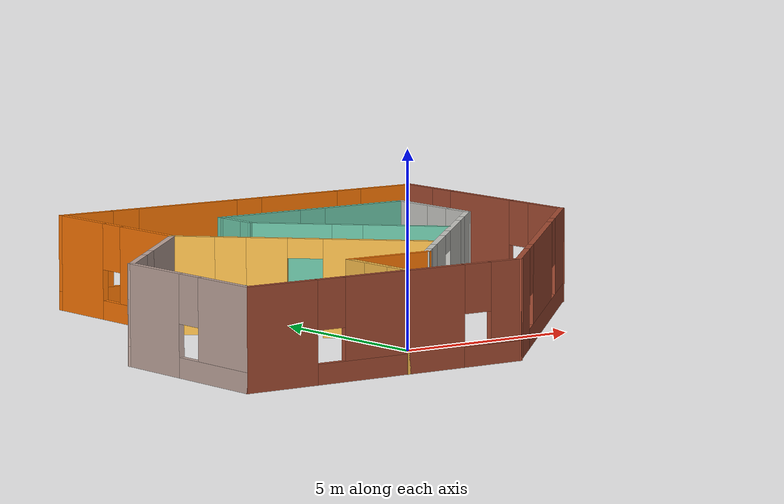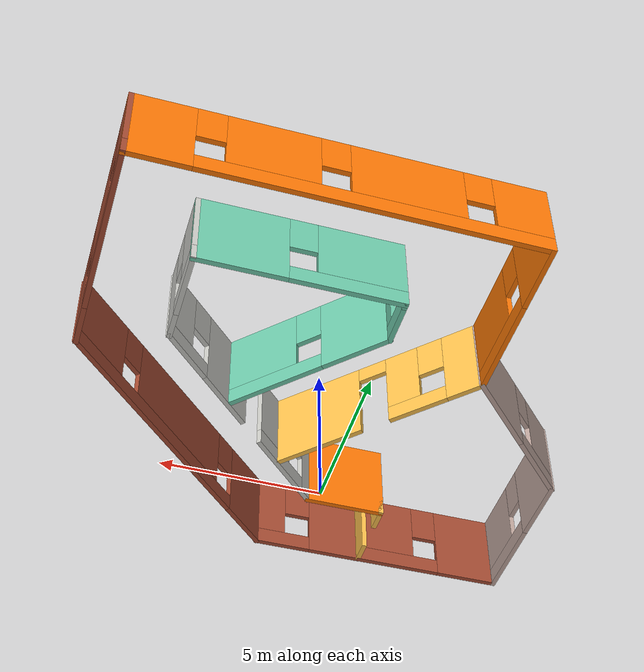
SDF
<?xml version='1.0'?>
<sdf version='1.6'>
  <model name='new_world'>
    <pose frame=''>0.766878 4.00697 0 0 -0 0</pose>
    <link name='Wall_0'>
      <pose frame=''>-2.83688 -5.59197 0 0 -0 1.5708</pose>
      <visual name='Wall_0_Visual_0'>
        <pose frame=''>-0.840266 0 1.25 0 -0 0</pose>
        <geometry>
          <box>
            <size>0.819468 0.15 2.5</size>
          </box>
        </geometry>
        <material>
          <script>
            <uri>file://media/materials/scripts/gazebo.material</uri>
            <name>Gazebo/Grey</name>
          </script>
          <ambient>1 0.764706 0.305882 1</ambient>
        </material>
        <meta>
          <layer>0</layer>
        </meta>
      </visual>
      <collision name='Wall_0_Collision_0'>
        <geometry>
          <box>
            <size>0.819468 0.15 2.5</size>
          </box>
        </geometry>
        <pose frame=''>-0.840266 0 1.25 0 -0 0</pose>
      </collision>
      <visual name='Wall_0_Visual_1'>
        <pose frame=''>0.859734 0 1.25 0 -0 0</pose>
        <geometry>
          <box>
            <size>0.780532 0.15 2.5</size>
          </box>
        </geometry>
        <material>
          <script>
            <uri>file://media/materials/scripts/gazebo.material</uri>
            <name>Gazebo/Grey</name>
          </script>
          <ambient>1 0.764706 0.305882 1</ambient>
        </material>
        <meta>
          <layer>0</layer>
        </meta>
      </visual>
      <collision name='Wall_0_Collision_1'>
        <geometry>
          <box>
            <size>0.780532 0.15 2.5</size>
          </box>
        </geometry>
        <pose frame=''>0.859734 0 1.25 0 -0 0</pose>
      </collision>
      <visual name='Wall_0_Visual_2'>
        <pose frame=''>0.019468 0 2.25 0 -0 0</pose>
        <geometry>
          <box>
            <size>0.9 0.15 0.5</size>
          </box>
        </geometry>
        <material>
          <script>
            <uri>file://media/materials/scripts/gazebo.material</uri>
            <name>Gazebo/Grey</name>
          </script>
          <ambient>1 0.764706 0.305882 1</ambient>
        </material>
        <meta>
          <layer>0</layer>
        </meta>
      </visual>
      <collision name='Wall_0_Collision_2'>
        <geometry>
          <box>
            <size>0.9 0.15 0.5</size>
          </box>
        </geometry>
        <pose frame=''>0.019468 0 2.25 0 -0 0</pose>
      </collision>
    </link>
    <link name='Wall_1'>
      <collision name='Wall_1_Collision'>
        <geometry>
          <box>
            <size>2.5 0.15 2.5</size>
          </box>
        </geometry>
        <pose frame=''>0 0 1.25 0 -0 0</pose>
      </collision>
      <visual name='Wall_1_Visual'>
        <pose frame=''>0 0 1.25 0 -0 0</pose>
        <geometry>
          <box>
            <size>2.5 0.15 2.5</size>
          </box>
        </geometry>
        <material>
          <script>
            <uri>file://media/materials/scripts/gazebo.material</uri>
            <name>Gazebo/Grey</name>
          </script>
          <ambient>0.996078 0.47451 0.0196078 1</ambient>
        </material>
        <meta>
          <layer>0</layer>
        </meta>
      </visual>
      <pose frame=''>-1.66188 -4.41697 0 0 -0 0</pose>
    </link>
    <link name='Wall_10'>
      <pose frame=''>-1.16188 -6.76697 0 0 -0 0</pose>
      <visual name='Wall_10_Visual_0'>
        <pose frame=''>-0.891437 0 1.25 0 -0 0</pose>
        <geometry>
          <box>
            <size>1.71713 0.15 2.5</size>
          </box>
        </geometry>
        <material>
          <script>
            <uri>file://media/materials/scripts/gazebo.material</uri>
            <name>Gazebo/Bricks</name>
          </script>
          <ambient>1 1 1 1</ambient>
        </material>
        <meta>
          <layer>0</layer>
        </meta>
      </visual>
      <collision name='Wall_10_Collision_0'>
        <geometry>
          <box>
            <size>1.71713 0.15 2.5</size>
          </box>
        </geometry>
        <pose frame=''>-0.891437 0 1.25 0 -0 0</pose>
      </collision>
      <visual name='Wall_10_Visual_1'>
        <pose frame=''>0.858563 0 0.25 0 -0 0</pose>
        <geometry>
          <box>
            <size>1.78287 0.15 0.5</size>
          </box>
        </geometry>
        <material>
          <script>
            <uri>file://media/materials/scripts/gazebo.material</uri>
            <name>Gazebo/Bricks</name>
          </script>
          <ambient>1 1 1 1</ambient>
        </material>
        <meta>
          <layer>0</layer>
        </meta>
      </visual>
      <collision name='Wall_10_Collision_1'>
        <geometry>
          <box>
            <size>1.78287 0.15 0.5</size>
          </box>
        </geometry>
        <pose frame=''>0.858563 0 0.25 0 -0 0</pose>
      </collision>
      <visual name='Wall_10_Visual_2'>
        <pose frame=''>1.25856 0 1.5 0 -0 0</pose>
        <geometry>
          <box>
            <size>0.982874 0.15 2</size>
          </box>
        </geometry>
        <material>
          <script>
            <uri>file://media/materials/scripts/gazebo.material</uri>
            <name>Gazebo/Bricks</name>
          </script>
          <ambient>1 1 1 1</ambient>
        </material>
        <meta>
          <layer>0</layer>
        </meta>
      </visual>
      <collision name='Wall_10_Collision_2'>
        <geometry>
          <box>
            <size>0.982874 0.15 2</size>
          </box>
        </geometry>
        <pose frame=''>1.25856 0 1.5 0 -0 0</pose>
      </collision>
      <visual name='Wall_10_Visual_3'>
        <pose frame=''>0.367126 0 1.9 0 -0 0</pose>
        <geometry>
          <box>
            <size>0.8 0.15 1.2</size>
          </box>
        </geometry>
        <material>
          <script>
            <uri>file://media/materials/scripts/gazebo.material</uri>
            <name>Gazebo/Bricks</name>
          </script>
          <ambient>1 1 1 1</ambient>
        </material>
        <meta>
          <layer>0</layer>
        </meta>
      </visual>
      <collision name='Wall_10_Collision_3'>
        <geometry>
          <box>
            <size>0.8 0.15 1.2</size>
          </box>
        </geometry>
        <pose frame=''>0.367126 0 1.9 0 -0 0</pose>
      </collision>
    </link>
    <link name='Wall_11'>
      <pose frame=''>3.99562 -3.28447 0 0 -0 0.785398</pose>
      <visual name='Wall_11_Visual_0'>
        <pose frame=''>-4.07453 0 1.25 0 -0 0</pose>
        <geometry>
          <box>
            <size>1.85095 0.15 2.5</size>
          </box>
        </geometry>
        <material>
          <script>
            <uri>file://media/materials/scripts/gazebo.material</uri>
            <name>Gazebo/Bricks</name>
          </script>
          <ambient>1 1 1 1</ambient>
        </material>
        <meta>
          <layer>0</layer>
        </meta>
      </visual>
      <collision name='Wall_11_Collision_0'>
        <geometry>
          <box>
            <size>1.85095 0.15 2.5</size>
          </box>
        </geometry>
        <pose frame=''>-4.07453 0 1.25 0 -0 0</pose>
      </collision>
      <visual name='Wall_11_Visual_1'>
        <pose frame=''>0.925475 0 0.25 0 -0 0</pose>
        <geometry>
          <box>
            <size>8.14905 0.15 0.5</size>
          </box>
        </geometry>
        <material>
          <script>
            <uri>file://media/materials/scripts/gazebo.material</uri>
            <name>Gazebo/Bricks</name>
          </script>
          <ambient>1 1 1 1</ambient>
        </material>
        <meta>
          <layer>0</layer>
        </meta>
      </visual>
      <collision name='Wall_11_Collision_1'>
        <geometry>
          <box>
            <size>8.14905 0.15 0.5</size>
          </box>
        </geometry>
        <pose frame=''>0.925475 0 0.25 0 -0 0</pose>
      </collision>
      <visual name='Wall_11_Visual_2'>
        <pose frame=''>-0.154489 0 1.5 0 -0 0</pose>
        <geometry>
          <box>
            <size>4.38912 0.15 2</size>
          </box>
        </geometry>
        <material>
          <script>
            <uri>file://media/materials/scripts/gazebo.material</uri>
            <name>Gazebo/Bricks</name>
          </script>
          <ambient>1 1 1 1</ambient>
        </material>
        <meta>
          <layer>0</layer>
        </meta>
      </visual>
      <collision name='Wall_11_Collision_2'>
        <geometry>
          <box>
            <size>4.38912 0.15 2</size>
          </box>
        </geometry>
        <pose frame=''>-0.154489 0 1.5 0 -0 0</pose>
      </collision>
      <visual name='Wall_11_Visual_3'>
        <pose frame=''>3.92004 0 1.5 0 -0 0</pose>
        <geometry>
          <box>
            <size>2.15993 0.15 2</size>
          </box>
        </geometry>
        <material>
          <script>
            <uri>file://media/materials/scripts/gazebo.material</uri>
            <name>Gazebo/Bricks</name>
          </script>
          <ambient>1 1 1 1</ambient>
        </material>
        <meta>
          <layer>0</layer>
        </meta>
      </visual>
      <collision name='Wall_11_Collision_3'>
        <geometry>
          <box>
            <size>2.15993 0.15 2</size>
          </box>
        </geometry>
        <pose frame=''>3.92004 0 1.5 0 -0 0</pose>
      </collision>
      <visual name='Wall_11_Visual_4'>
        <pose frame=''>-2.74905 0 1.9 0 -0 0</pose>
        <geometry>
          <box>
            <size>0.8 0.15 1.2</size>
          </box>
        </geometry>
        <material>
          <script>
            <uri>file://media/materials/scripts/gazebo.material</uri>
            <name>Gazebo/Bricks</name>
          </script>
          <ambient>1 1 1 1</ambient>
        </material>
        <meta>
          <layer>0</layer>
        </meta>
      </visual>
      <collision name='Wall_11_Collision_4'>
        <geometry>
          <box>
            <size>0.8 0.15 1.2</size>
          </box>
        </geometry>
        <pose frame=''>-2.74905 0 1.9 0 -0 0</pose>
      </collision>
      <visual name='Wall_11_Visual_5'>
        <pose frame=''>2.44007 0 1.9 0 -0 0</pose>
        <geometry>
          <box>
            <size>0.8 0.15 1.2</size>
          </box>
        </geometry>
        <material>
          <script>
            <uri>file://media/materials/scripts/gazebo.material</uri>
            <name>Gazebo/Bricks</name>
          </script>
          <ambient>1 1 1 1</ambient>
        </material>
        <meta>
          <layer>0</layer>
        </meta>
      </visual>
      <collision name='Wall_11_Collision_5'>
        <geometry>
          <box>
            <size>0.8 0.15 1.2</size>
          </box>
        </geometry>
        <pose frame=''>2.44007 0 1.9 0 -0 0</pose>
      </collision>
    </link>
    <link name='Wall_17'>
      <pose frame=''>7.47812 3.49803 0 0 -0 1.5708</pose>
      <visual name='Wall_17_Visual_0'>
        <pose frame=''>-2.68969 0 1.25 0 -0 0</pose>
        <geometry>
          <box>
            <size>1.37062 0.15 2.5</size>
          </box>
        </geometry>
        <material>
          <script>
            <uri>file://media/materials/scripts/gazebo.material</uri>
            <name>Gazebo/Bricks</name>
          </script>
          <ambient>1 1 1 1</ambient>
        </material>
        <meta>
          <layer>0</layer>
        </meta>
      </visual>
      <collision name='Wall_17_Collision_0'>
        <geometry>
          <box>
            <size>1.37062 0.15 2.5</size>
          </box>
        </geometry>
        <pose frame=''>-2.68969 0 1.25 0 -0 0</pose>
      </collision>
      <visual name='Wall_17_Visual_1'>
        <pose frame=''>0.685309 0 0.25 0 -0 0</pose>
        <geometry>
          <box>
            <size>5.37938 0.15 0.5</size>
          </box>
        </geometry>
        <material>
          <script>
            <uri>file://media/materials/scripts/gazebo.material</uri>
            <name>Gazebo/Bricks</name>
          </script>
          <ambient>1 1 1 1</ambient>
        </material>
        <meta>
          <layer>0</layer>
        </meta>
      </visual>
      <collision name='Wall_17_Collision_1'>
        <geometry>
          <box>
            <size>5.37938 0.15 0.5</size>
          </box>
        </geometry>
        <pose frame=''>0.685309 0 0.25 0 -0 0</pose>
      </collision>
      <visual name='Wall_17_Visual_2'>
        <pose frame=''>0.086671 0 1.5 0 -0 0</pose>
        <geometry>
          <box>
            <size>2.5821 0.15 2</size>
          </box>
        </geometry>
        <material>
          <script>
            <uri>file://media/materials/scripts/gazebo.material</uri>
            <name>Gazebo/Bricks</name>
          </script>
          <ambient>1 1 1 1</ambient>
        </material>
        <meta>
          <layer>0</layer>
        </meta>
      </visual>
      <collision name='Wall_17_Collision_2'>
        <geometry>
          <box>
            <size>2.5821 0.15 2</size>
          </box>
        </geometry>
        <pose frame=''>0.086671 0 1.5 0 -0 0</pose>
      </collision>
      <visual name='Wall_17_Visual_3'>
        <pose frame=''>2.77636 0 1.5 0 -0 0</pose>
        <geometry>
          <box>
            <size>1.19728 0.15 2</size>
          </box>
        </geometry>
        <material>
          <script>
            <uri>file://media/materials/scripts/gazebo.material</uri>
            <name>Gazebo/Bricks</name>
          </script>
          <ambient>1 1 1 1</ambient>
        </material>
        <meta>
          <layer>0</layer>
        </meta>
      </visual>
      <collision name='Wall_17_Collision_3'>
        <geometry>
          <box>
            <size>1.19728 0.15 2</size>
          </box>
        </geometry>
        <pose frame=''>2.77636 0 1.5 0 -0 0</pose>
      </collision>
      <visual name='Wall_17_Visual_4'>
        <pose frame=''>-1.60438 0 1.9 0 -0 0</pose>
        <geometry>
          <box>
            <size>0.8 0.15 1.2</size>
          </box>
        </geometry>
        <material>
          <script>
            <uri>file://media/materials/scripts/gazebo.material</uri>
            <name>Gazebo/Bricks</name>
          </script>
          <ambient>1 1 1 1</ambient>
        </material>
        <meta>
          <layer>0</layer>
        </meta>
      </visual>
      <collision name='Wall_17_Collision_4'>
        <geometry>
          <box>
            <size>0.8 0.15 1.2</size>
          </box>
        </geometry>
        <pose frame=''>-1.60438 0 1.9 0 -0 0</pose>
      </collision>
      <visual name='Wall_17_Visual_5'>
        <pose frame=''>1.77772 0 1.9 0 -0 0</pose>
        <geometry>
          <box>
            <size>0.8 0.15 1.2</size>
          </box>
        </geometry>
        <material>
          <script>
            <uri>file://media/materials/scripts/gazebo.material</uri>
            <name>Gazebo/Bricks</name>
          </script>
          <ambient>1 1 1 1</ambient>
        </material>
        <meta>
          <layer>0</layer>
        </meta>
      </visual>
      <collision name='Wall_17_Collision_5'>
        <geometry>
          <box>
            <size>0.8 0.15 1.2</size>
          </box>
        </geometry>
        <pose frame=''>1.77772 0 1.9 0 -0 0</pose>
      </collision>
    </link>
    <link name='Wall_18'>
      <pose frame=''>1.80312 6.79803 0 0 -0 3.14159</pose>
      <visual name='Wall_18_Visual_0'>
        <pose frame=''>-4.8391 0 1.25 0 -0 0</pose>
        <geometry>
          <box>
            <size>1.8218 0.15 2.5</size>
          </box>
        </geometry>
        <material>
          <script>
            <uri>file://media/materials/scripts/gazebo.material</uri>
            <name>Gazebo/Grey</name>
          </script>
          <ambient>0.996078 0.47451 0.0196078 1</ambient>
        </material>
        <meta>
          <layer>0</layer>
        </meta>
      </visual>
      <collision name='Wall_18_Collision_0'>
        <geometry>
          <box>
            <size>1.8218 0.15 2.5</size>
          </box>
        </geometry>
        <pose frame=''>-4.8391 0 1.25 0 -0 0</pose>
      </collision>
      <visual name='Wall_18_Visual_1'>
        <pose frame=''>0.910901 0 0.25 0 -0 0</pose>
        <geometry>
          <box>
            <size>9.6782 0.15 0.5</size>
          </box>
        </geometry>
        <material>
          <script>
            <uri>file://media/materials/scripts/gazebo.material</uri>
            <name>Gazebo/Grey</name>
          </script>
          <ambient>0.996078 0.47451 0.0196078 1</ambient>
        </material>
        <meta>
          <layer>0</layer>
        </meta>
      </visual>
      <collision name='Wall_18_Collision_1'>
        <geometry>
          <box>
            <size>9.6782 0.15 0.5</size>
          </box>
        </geometry>
        <pose frame=''>0.910901 0 0.25 0 -0 0</pose>
      </collision>
      <visual name='Wall_18_Visual_2'>
        <pose frame=''>-1.86905 0 1.5 0 -0 0</pose>
        <geometry>
          <box>
            <size>2.51829 0.15 2</size>
          </box>
        </geometry>
        <material>
          <script>
            <uri>file://media/materials/scripts/gazebo.material</uri>
            <name>Gazebo/Grey</name>
          </script>
          <ambient>0.996078 0.47451 0.0196078 1</ambient>
        </material>
        <meta>
          <layer>0</layer>
        </meta>
      </visual>
      <collision name='Wall_18_Collision_2'>
        <geometry>
          <box>
            <size>2.51829 0.15 2</size>
          </box>
        </geometry>
        <pose frame=''>-1.86905 0 1.5 0 -0 0</pose>
      </collision>
      <visual name='Wall_18_Visual_3'>
        <pose frame=''>1.7683 0 1.5 0 -0 0</pose>
        <geometry>
          <box>
            <size>3.15642 0.15 2</size>
          </box>
        </geometry>
        <material>
          <script>
            <uri>file://media/materials/scripts/gazebo.material</uri>
            <name>Gazebo/Grey</name>
          </script>
          <ambient>0.996078 0.47451 0.0196078 1</ambient>
        </material>
        <meta>
          <layer>0</layer>
        </meta>
      </visual>
      <collision name='Wall_18_Collision_3'>
        <geometry>
          <box>
            <size>3.15642 0.15 2</size>
          </box>
        </geometry>
        <pose frame=''>1.7683 0 1.5 0 -0 0</pose>
      </collision>
      <visual name='Wall_18_Visual_4'>
        <pose frame=''>4.94826 0 1.5 0 -0 0</pose>
        <geometry>
          <box>
            <size>1.60349 0.15 2</size>
          </box>
        </geometry>
        <material>
          <script>
            <uri>file://media/materials/scripts/gazebo.material</uri>
            <name>Gazebo/Grey</name>
          </script>
          <ambient>0.996078 0.47451 0.0196078 1</ambient>
        </material>
        <meta>
          <layer>0</layer>
        </meta>
      </visual>
      <collision name='Wall_18_Collision_4'>
        <geometry>
          <box>
            <size>1.60349 0.15 2</size>
          </box>
        </geometry>
        <pose frame=''>4.94826 0 1.5 0 -0 0</pose>
      </collision>
      <visual name='Wall_18_Visual_5'>
        <pose frame=''>-3.5282 0 1.9 0 -0 0</pose>
        <geometry>
          <box>
            <size>0.8 0.15 1.2</size>
          </box>
        </geometry>
        <material>
          <script>
            <uri>file://media/materials/scripts/gazebo.material</uri>
            <name>Gazebo/Grey</name>
          </script>
          <ambient>0.996078 0.47451 0.0196078 1</ambient>
        </material>
        <meta>
          <layer>0</layer>
        </meta>
      </visual>
      <collision name='Wall_18_Collision_5'>
        <geometry>
          <box>
            <size>0.8 0.15 1.2</size>
          </box>
        </geometry>
        <pose frame=''>-3.5282 0 1.9 0 -0 0</pose>
      </collision>
      <visual name='Wall_18_Visual_6'>
        <pose frame=''>-0.209908 0 1.9 0 -0 0</pose>
        <geometry>
          <box>
            <size>0.8 0.15 1.2</size>
          </box>
        </geometry>
        <material>
          <script>
            <uri>file://media/materials/scripts/gazebo.material</uri>
            <name>Gazebo/Grey</name>
          </script>
          <ambient>0.996078 0.47451 0.0196078 1</ambient>
        </material>
        <meta>
          <layer>0</layer>
        </meta>
      </visual>
      <collision name='Wall_18_Collision_6'>
        <geometry>
          <box>
            <size>0.8 0.15 1.2</size>
          </box>
        </geometry>
        <pose frame=''>-0.209908 0 1.9 0 -0 0</pose>
      </collision>
      <visual name='Wall_18_Visual_7'>
        <pose frame=''>3.74651 0 1.9 0 -0 0</pose>
        <geometry>
          <box>
            <size>0.8 0.15 1.2</size>
          </box>
        </geometry>
        <material>
          <script>
            <uri>file://media/materials/scripts/gazebo.material</uri>
            <name>Gazebo/Grey</name>
          </script>
          <ambient>0.996078 0.47451 0.0196078 1</ambient>
        </material>
        <meta>
          <layer>0</layer>
        </meta>
      </visual>
      <collision name='Wall_18_Collision_7'>
        <geometry>
          <box>
            <size>0.8 0.15 1.2</size>
          </box>
        </geometry>
        <pose frame=''>3.74651 0 1.9 0 -0 0</pose>
      </collision>
    </link>
    <link name='Wall_19'>
      <pose frame=''>-3.87188 4.24803 0 0 0 -1.5708</pose>
      <visual name='Wall_19_Visual_0'>
        <pose frame=''>-1.57967 0 1.25 0 -0 0</pose>
        <geometry>
          <box>
            <size>2.09066 0.15 2.5</size>
          </box>
        </geometry>
        <material>
          <script>
            <uri>file://media/materials/scripts/gazebo.material</uri>
            <name>Gazebo/Grey</name>
          </script>
          <ambient>0.996078 0.47451 0.0196078 1</ambient>
        </material>
        <meta>
          <layer>0</layer>
        </meta>
      </visual>
      <collision name='Wall_19_Collision_0'>
        <geometry>
          <box>
            <size>2.09066 0.15 2.5</size>
          </box>
        </geometry>
        <pose frame=''>-1.57967 0 1.25 0 -0 0</pose>
      </collision>
      <visual name='Wall_19_Visual_1'>
        <pose frame=''>1.04533 0 0.25 0 -0 0</pose>
        <geometry>
          <box>
            <size>3.15934 0.15 0.5</size>
          </box>
        </geometry>
        <material>
          <script>
            <uri>file://media/materials/scripts/gazebo.material</uri>
            <name>Gazebo/Grey</name>
          </script>
          <ambient>0.996078 0.47451 0.0196078 1</ambient>
        </material>
        <meta>
          <layer>0</layer>
        </meta>
      </visual>
      <collision name='Wall_19_Collision_1'>
        <geometry>
          <box>
            <size>3.15934 0.15 0.5</size>
          </box>
        </geometry>
        <pose frame=''>1.04533 0 0.25 0 -0 0</pose>
      </collision>
      <visual name='Wall_19_Visual_2'>
        <pose frame=''>1.44533 0 1.5 0 -0 0</pose>
        <geometry>
          <box>
            <size>2.35934 0.15 2</size>
          </box>
        </geometry>
        <material>
          <script>
            <uri>file://media/materials/scripts/gazebo.material</uri>
            <name>Gazebo/Grey</name>
          </script>
          <ambient>0.996078 0.47451 0.0196078 1</ambient>
        </material>
        <meta>
          <layer>0</layer>
        </meta>
      </visual>
      <collision name='Wall_19_Collision_2'>
        <geometry>
          <box>
            <size>2.35934 0.15 2</size>
          </box>
        </geometry>
        <pose frame=''>1.44533 0 1.5 0 -0 0</pose>
      </collision>
      <visual name='Wall_19_Visual_3'>
        <pose frame=''>-0.134337 0 1.9 0 -0 0</pose>
        <geometry>
          <box>
            <size>0.8 0.15 1.2</size>
          </box>
        </geometry>
        <material>
          <script>
            <uri>file://media/materials/scripts/gazebo.material</uri>
            <name>Gazebo/Grey</name>
          </script>
          <ambient>0.996078 0.47451 0.0196078 1</ambient>
        </material>
        <meta>
          <layer>0</layer>
        </meta>
      </visual>
      <collision name='Wall_19_Collision_3'>
        <geometry>
          <box>
            <size>0.8 0.15 1.2</size>
          </box>
        </geometry>
        <pose frame=''>-0.134337 0 1.9 0 -0 0</pose>
      </collision>
    </link>
    <link name='Wall_2'>
      <pose frame=''>2.28852 -1.64157 0 0 -0 0.785398</pose>
      <visual name='Wall_2_Visual_0'>
        <pose frame=''>-3.70975 0 1.25 0 -0 0</pose>
        <geometry>
          <box>
            <size>0.580496 0.15 2.5</size>
          </box>
        </geometry>
        <material>
          <script>
            <uri>file://media/materials/scripts/gazebo.material</uri>
            <name>Gazebo/CeilingTiled</name>
          </script>
          <ambient>1 1 1 1</ambient>
        </material>
        <meta>
          <layer>0</layer>
        </meta>
      </visual>
      <collision name='Wall_2_Collision_0'>
        <geometry>
          <box>
            <size>0.580496 0.15 2.5</size>
          </box>
        </geometry>
        <pose frame=''>-3.70975 0 1.25 0 -0 0</pose>
      </collision>
      <visual name='Wall_2_Visual_1'>
        <pose frame=''>1.02143 0 1.25 0 -0 0</pose>
        <geometry>
          <box>
            <size>2.12811 0.15 2.5</size>
          </box>
        </geometry>
        <material>
          <script>
            <uri>file://media/materials/scripts/gazebo.material</uri>
            <name>Gazebo/CeilingTiled</name>
          </script>
          <ambient>1 1 1 1</ambient>
        </material>
        <meta>
          <layer>0</layer>
        </meta>
      </visual>
      <collision name='Wall_2_Collision_1'>
        <geometry>
          <box>
            <size>2.12811 0.15 2.5</size>
          </box>
        </geometry>
        <pose frame=''>1.02143 0 1.25 0 -0 0</pose>
      </collision>
      <visual name='Wall_2_Visual_2'>
        <pose frame=''>-2.18106 0 0.25 0 -0 0</pose>
        <geometry>
          <box>
            <size>2.47688 0.15 0.5</size>
          </box>
        </geometry>
        <material>
          <script>
            <uri>file://media/materials/scripts/gazebo.material</uri>
            <name>Gazebo/CeilingTiled</name>
          </script>
          <ambient>1 1 1 1</ambient>
        </material>
        <meta>
          <layer>0</layer>
        </meta>
      </visual>
      <collision name='Wall_2_Collision_2'>
        <geometry>
          <box>
            <size>2.47688 0.15 0.5</size>
          </box>
        </geometry>
        <pose frame=''>-2.18106 0 0.25 0 -0 0</pose>
      </collision>
      <visual name='Wall_2_Visual_3'>
        <pose frame=''>3.04274 0 0.25 0 -0 0</pose>
        <geometry>
          <box>
            <size>1.91452 0.15 0.5</size>
          </box>
        </geometry>
        <material>
          <script>
            <uri>file://media/materials/scripts/gazebo.material</uri>
            <name>Gazebo/CeilingTiled</name>
          </script>
          <ambient>1 1 1 1</ambient>
        </material>
        <meta>
          <layer>0</layer>
        </meta>
      </visual>
      <collision name='Wall_2_Collision_3'>
        <geometry>
          <box>
            <size>1.91452 0.15 0.5</size>
          </box>
        </geometry>
        <pose frame=''>3.04274 0 0.25 0 -0 0</pose>
      </collision>
      <visual name='Wall_2_Visual_4'>
        <pose frame=''>-1.78106 0 1.5 0 -0 0</pose>
        <geometry>
          <box>
            <size>1.67688 0.15 2</size>
          </box>
        </geometry>
        <material>
          <script>
            <uri>file://media/materials/scripts/gazebo.material</uri>
            <name>Gazebo/CeilingTiled</name>
          </script>
          <ambient>1 1 1 1</ambient>
        </material>
        <meta>
          <layer>0</layer>
        </meta>
      </visual>
      <collision name='Wall_2_Collision_4'>
        <geometry>
          <box>
            <size>1.67688 0.15 2</size>
          </box>
        </geometry>
        <pose frame=''>-1.78106 0 1.5 0 -0 0</pose>
      </collision>
      <visual name='Wall_2_Visual_5'>
        <pose frame=''>-1.78106 0 1.5 0 -0 0</pose>
        <geometry>
          <box>
            <size>1.67688 0.15 2</size>
          </box>
        </geometry>
        <material>
          <script>
            <uri>file://media/materials/scripts/gazebo.material</uri>
            <name>Gazebo/CeilingTiled</name>
          </script>
          <ambient>1 1 1 1</ambient>
        </material>
        <meta>
          <layer>0</layer>
        </meta>
      </visual>
      <collision name='Wall_2_Collision_5'>
        <geometry>
          <box>
            <size>1.67688 0.15 2</size>
          </box>
        </geometry>
        <pose frame=''>-1.78106 0 1.5 0 -0 0</pose>
      </collision>
      <visual name='Wall_2_Visual_6'>
        <pose frame=''>3.44274 0 1.5 0 -0 0</pose>
        <geometry>
          <box>
            <size>1.11452 0.15 2</size>
          </box>
        </geometry>
        <material>
          <script>
            <uri>file://media/materials/scripts/gazebo.material</uri>
            <name>Gazebo/CeilingTiled</name>
          </script>
          <ambient>1 1 1 1</ambient>
        </material>
        <meta>
          <layer>0</layer>
        </meta>
      </visual>
      <collision name='Wall_2_Collision_6'>
        <geometry>
          <box>
            <size>1.11452 0.15 2</size>
          </box>
        </geometry>
        <pose frame=''>3.44274 0 1.5 0 -0 0</pose>
      </collision>
      <visual name='Wall_2_Visual_7'>
        <pose frame=''>-3.0195 0 1.9 0 -0 0</pose>
        <geometry>
          <box>
            <size>0.8 0.15 1.2</size>
          </box>
        </geometry>
        <material>
          <script>
            <uri>file://media/materials/scripts/gazebo.material</uri>
            <name>Gazebo/CeilingTiled</name>
          </script>
          <ambient>1 1 1 1</ambient>
        </material>
        <meta>
          <layer>0</layer>
        </meta>
      </visual>
      <collision name='Wall_2_Collision_7'>
        <geometry>
          <box>
            <size>0.8 0.15 1.2</size>
          </box>
        </geometry>
        <pose frame=''>-3.0195 0 1.9 0 -0 0</pose>
      </collision>
      <visual name='Wall_2_Visual_8'>
        <pose frame=''>2.48548 0 1.9 0 -0 0</pose>
        <geometry>
          <box>
            <size>0.8 0.15 1.2</size>
          </box>
        </geometry>
        <material>
          <script>
            <uri>file://media/materials/scripts/gazebo.material</uri>
            <name>Gazebo/CeilingTiled</name>
          </script>
          <ambient>1 1 1 1</ambient>
        </material>
        <meta>
          <layer>0</layer>
        </meta>
      </visual>
      <collision name='Wall_2_Collision_8'>
        <geometry>
          <box>
            <size>0.8 0.15 1.2</size>
          </box>
        </geometry>
        <pose frame=''>2.48548 0 1.9 0 -0 0</pose>
      </collision>
      <visual name='Wall_2_Visual_9'>
        <pose frame=''>-0.492627 0 2.25 0 -0 0</pose>
        <geometry>
          <box>
            <size>0.9 0.15 0.5</size>
          </box>
        </geometry>
        <material>
          <script>
            <uri>file://media/materials/scripts/gazebo.material</uri>
            <name>Gazebo/CeilingTiled</name>
          </script>
          <ambient>1 1 1 1</ambient>
        </material>
        <meta>
          <layer>0</layer>
        </meta>
      </visual>
      <collision name='Wall_2_Collision_9'>
        <geometry>
          <box>
            <size>0.9 0.15 0.5</size>
          </box>
        </geometry>
        <pose frame=''>-0.492627 0 2.25 0 -0 0</pose>
      </collision>
      <visual name='Wall_2_Visual_10'>
        <pose frame=''>-0.492627 0 2.25 0 -0 0</pose>
        <geometry>
          <box>
            <size>0.9 0.15 0.5</size>
          </box>
        </geometry>
        <material>
          <script>
            <uri>file://media/materials/scripts/gazebo.material</uri>
            <name>Gazebo/CeilingTiled</name>
          </script>
          <ambient>1 1 1 1</ambient>
        </material>
        <meta>
          <layer>0</layer>
        </meta>
      </visual>
      <collision name='Wall_2_Collision_10'>
        <geometry>
          <box>
            <size>0.9 0.15 0.5</size>
          </box>
        </geometry>
        <pose frame=''>-0.492627 0 2.25 0 -0 0</pose>
      </collision>
    </link>
    <link name='Wall_22'>
      <pose frame=''>-1.53843 -0.63542 0 0 0 -0.785398</pose>
      <visual name='Wall_22_Visual_0'>
        <pose frame=''>-2.78947 0 1.25 0 -0 0</pose>
        <geometry>
          <box>
            <size>1.17106 0.15 2.5</size>
          </box>
        </geometry>
        <material>
          <script>
            <uri>file://media/materials/scripts/gazebo.material</uri>
            <name>Gazebo/Grey</name>
          </script>
          <ambient>1 0.764706 0.305882 1</ambient>
        </material>
        <meta>
          <layer>0</layer>
        </meta>
      </visual>
      <collision name='Wall_22_Collision_0'>
        <geometry>
          <box>
            <size>1.17106 0.15 2.5</size>
          </box>
        </geometry>
        <pose frame=''>-2.78947 0 1.25 0 -0 0</pose>
      </collision>
      <visual name='Wall_22_Visual_1'>
        <pose frame=''>1.95811 0 1.25 0 -0 0</pose>
        <geometry>
          <box>
            <size>2.83378 0.15 2.5</size>
          </box>
        </geometry>
        <material>
          <script>
            <uri>file://media/materials/scripts/gazebo.material</uri>
            <name>Gazebo/Grey</name>
          </script>
          <ambient>1 0.764706 0.305882 1</ambient>
        </material>
        <meta>
          <layer>0</layer>
        </meta>
      </visual>
      <collision name='Wall_22_Collision_1'>
        <geometry>
          <box>
            <size>2.83378 0.15 2.5</size>
          </box>
        </geometry>
        <pose frame=''>1.95811 0 1.25 0 -0 0</pose>
      </collision>
      <visual name='Wall_22_Visual_2'>
        <pose frame=''>-1.28136 0 0.25 0 -0 0</pose>
        <geometry>
          <box>
            <size>1.84516 0.15 0.5</size>
          </box>
        </geometry>
        <material>
          <script>
            <uri>file://media/materials/scripts/gazebo.material</uri>
            <name>Gazebo/Grey</name>
          </script>
          <ambient>1 0.764706 0.305882 1</ambient>
        </material>
        <meta>
          <layer>0</layer>
        </meta>
      </visual>
      <collision name='Wall_22_Collision_2'>
        <geometry>
          <box>
            <size>1.84516 0.15 0.5</size>
          </box>
        </geometry>
        <pose frame=''>-1.28136 0 0.25 0 -0 0</pose>
      </collision>
      <visual name='Wall_22_Visual_3'>
        <pose frame=''>-0.881363 0 1.5 0 -0 0</pose>
        <geometry>
          <box>
            <size>1.04516 0.15 2</size>
          </box>
        </geometry>
        <material>
          <script>
            <uri>file://media/materials/scripts/gazebo.material</uri>
            <name>Gazebo/Grey</name>
          </script>
          <ambient>1 0.764706 0.305882 1</ambient>
        </material>
        <meta>
          <layer>0</layer>
        </meta>
      </visual>
      <collision name='Wall_22_Collision_3'>
        <geometry>
          <box>
            <size>1.04516 0.15 2</size>
          </box>
        </geometry>
        <pose frame=''>-0.881363 0 1.5 0 -0 0</pose>
      </collision>
      <visual name='Wall_22_Visual_4'>
        <pose frame=''>-1.80394 0 1.9 0 -0 0</pose>
        <geometry>
          <box>
            <size>0.8 0.15 1.2</size>
          </box>
        </geometry>
        <material>
          <script>
            <uri>file://media/materials/scripts/gazebo.material</uri>
            <name>Gazebo/Grey</name>
          </script>
          <ambient>1 0.764706 0.305882 1</ambient>
        </material>
        <meta>
          <layer>0</layer>
        </meta>
      </visual>
      <collision name='Wall_22_Collision_4'>
        <geometry>
          <box>
            <size>0.8 0.15 1.2</size>
          </box>
        </geometry>
        <pose frame=''>-1.80394 0 1.9 0 -0 0</pose>
      </collision>
      <visual name='Wall_22_Visual_5'>
        <pose frame=''>0.091216 0 2.25 0 -0 0</pose>
        <geometry>
          <box>
            <size>0.9 0.15 0.5</size>
          </box>
        </geometry>
        <material>
          <script>
            <uri>file://media/materials/scripts/gazebo.material</uri>
            <name>Gazebo/Grey</name>
          </script>
          <ambient>1 0.764706 0.305882 1</ambient>
        </material>
        <meta>
          <layer>0</layer>
        </meta>
      </visual>
      <collision name='Wall_22_Collision_5'>
        <geometry>
          <box>
            <size>0.9 0.15 0.5</size>
          </box>
        </geometry>
        <pose frame=''>0.091216 0 2.25 0 -0 0</pose>
      </collision>
    </link>
    <link name='Wall_24'>
      <pose frame=''>-5.675 -0.10509 0 0 0 -2.35619</pose>
      <visual name='Wall_24_Visual_0'>
        <pose frame=''>-1.21466 0 1.25 0 -0 0</pose>
        <geometry>
          <box>
            <size>2.82068 0.15 2.5</size>
          </box>
        </geometry>
        <material>
          <script>
            <uri>file://media/materials/scripts/gazebo.material</uri>
            <name>Gazebo/Grey</name>
          </script>
          <ambient>0.760784 0.662745 0.627451 1</ambient>
        </material>
        <meta>
          <layer>0</layer>
        </meta>
      </visual>
      <collision name='Wall_24_Collision_0'>
        <geometry>
          <box>
            <size>2.82068 0.15 2.5</size>
          </box>
        </geometry>
        <pose frame=''>-1.21466 0 1.25 0 -0 0</pose>
      </collision>
      <visual name='Wall_24_Visual_1'>
        <pose frame=''>1.41034 0 0.25 0 -0 0</pose>
        <geometry>
          <box>
            <size>2.42932 0.15 0.5</size>
          </box>
        </geometry>
        <material>
          <script>
            <uri>file://media/materials/scripts/gazebo.material</uri>
            <name>Gazebo/Grey</name>
          </script>
          <ambient>0.760784 0.662745 0.627451 1</ambient>
        </material>
        <meta>
          <layer>0</layer>
        </meta>
      </visual>
      <collision name='Wall_24_Collision_1'>
        <geometry>
          <box>
            <size>2.42932 0.15 0.5</size>
          </box>
        </geometry>
        <pose frame=''>1.41034 0 0.25 0 -0 0</pose>
      </collision>
      <visual name='Wall_24_Visual_2'>
        <pose frame=''>1.81034 0 1.5 0 -0 0</pose>
        <geometry>
          <box>
            <size>1.62932 0.15 2</size>
          </box>
        </geometry>
        <material>
          <script>
            <uri>file://media/materials/scripts/gazebo.material</uri>
            <name>Gazebo/Grey</name>
          </script>
          <ambient>0.760784 0.662745 0.627451 1</ambient>
        </material>
        <meta>
          <layer>0</layer>
        </meta>
      </visual>
      <collision name='Wall_24_Collision_2'>
        <geometry>
          <box>
            <size>1.62932 0.15 2</size>
          </box>
        </geometry>
        <pose frame=''>1.81034 0 1.5 0 -0 0</pose>
      </collision>
      <visual name='Wall_24_Visual_3'>
        <pose frame=''>0.595677 0 1.9 0 -0 0</pose>
        <geometry>
          <box>
            <size>0.8 0.15 1.2</size>
          </box>
        </geometry>
        <material>
          <script>
            <uri>file://media/materials/scripts/gazebo.material</uri>
            <name>Gazebo/Grey</name>
          </script>
          <ambient>0.760784 0.662745 0.627451 1</ambient>
        </material>
        <meta>
          <layer>0</layer>
        </meta>
      </visual>
      <collision name='Wall_24_Collision_3'>
        <geometry>
          <box>
            <size>0.8 0.15 1.2</size>
          </box>
        </geometry>
        <pose frame=''>0.595677 0 1.9 0 -0 0</pose>
      </collision>
    </link>
    <link name='Wall_25'>
      <pose frame=''>-7.47812 -4.33321 0 0 0 -1.5708</pose>
      <visual name='Wall_25_Visual_0'>
        <pose frame=''>-1.40468 0 1.25 0 -0 0</pose>
        <geometry>
          <box>
            <size>2.19065 0.15 2.5</size>
          </box>
        </geometry>
        <material>
          <script>
            <uri>file://media/materials/scripts/gazebo.material</uri>
            <name>Gazebo/Grey</name>
          </script>
          <ambient>0.760784 0.662745 0.627451 1</ambient>
        </material>
        <meta>
          <layer>0</layer>
        </meta>
      </visual>
      <collision name='Wall_25_Collision_0'>
        <geometry>
          <box>
            <size>2.19065 0.15 2.5</size>
          </box>
        </geometry>
        <pose frame=''>-1.40468 0 1.25 0 -0 0</pose>
      </collision>
      <visual name='Wall_25_Visual_1'>
        <pose frame=''>1.09532 0 0.25 0 -0 0</pose>
        <geometry>
          <box>
            <size>2.80935 0.15 0.5</size>
          </box>
        </geometry>
        <material>
          <script>
            <uri>file://media/materials/scripts/gazebo.material</uri>
            <name>Gazebo/Grey</name>
          </script>
          <ambient>0.760784 0.662745 0.627451 1</ambient>
        </material>
        <meta>
          <layer>0</layer>
        </meta>
      </visual>
      <collision name='Wall_25_Collision_1'>
        <geometry>
          <box>
            <size>2.80935 0.15 0.5</size>
          </box>
        </geometry>
        <pose frame=''>1.09532 0 0.25 0 -0 0</pose>
      </collision>
      <visual name='Wall_25_Visual_2'>
        <pose frame=''>1.49532 0 1.5 0 -0 0</pose>
        <geometry>
          <box>
            <size>2.00935 0.15 2</size>
          </box>
        </geometry>
        <material>
          <script>
            <uri>file://media/materials/scripts/gazebo.material</uri>
            <name>Gazebo/Grey</name>
          </script>
          <ambient>0.760784 0.662745 0.627451 1</ambient>
        </material>
        <meta>
          <layer>0</layer>
        </meta>
      </visual>
      <collision name='Wall_25_Collision_2'>
        <geometry>
          <box>
            <size>2.00935 0.15 2</size>
          </box>
        </geometry>
        <pose frame=''>1.49532 0 1.5 0 -0 0</pose>
      </collision>
      <visual name='Wall_25_Visual_3'>
        <pose frame=''>0.090648 0 1.9 0 -0 0</pose>
        <geometry>
          <box>
            <size>0.8 0.15 1.2</size>
          </box>
        </geometry>
        <material>
          <script>
            <uri>file://media/materials/scripts/gazebo.material</uri>
            <name>Gazebo/Grey</name>
          </script>
          <ambient>0.760784 0.662745 0.627451 1</ambient>
        </material>
        <meta>
          <layer>0</layer>
        </meta>
      </visual>
      <collision name='Wall_25_Collision_3'>
        <geometry>
          <box>
            <size>0.8 0.15 1.2</size>
          </box>
        </geometry>
        <pose frame=''>0.090648 0 1.9 0 -0 0</pose>
      </collision>
    </link>
    <link name='Wall_26'>
      <pose frame=''>-5.17812 -6.75821 0 0 -0 0</pose>
      <visual name='Wall_26_Visual_0'>
        <pose frame=''>-1.36547 0 1.25 0 -0 0</pose>
        <geometry>
          <box>
            <size>2.01907 0.15 2.5</size>
          </box>
        </geometry>
        <material>
          <script>
            <uri>file://media/materials/scripts/gazebo.material</uri>
            <name>Gazebo/Bricks</name>
          </script>
          <ambient>1 1 1 1</ambient>
        </material>
        <meta>
          <layer>0</layer>
        </meta>
      </visual>
      <collision name='Wall_26_Collision_0'>
        <geometry>
          <box>
            <size>2.01907 0.15 2.5</size>
          </box>
        </geometry>
        <pose frame=''>-1.36547 0 1.25 0 -0 0</pose>
      </collision>
      <visual name='Wall_26_Visual_1'>
        <pose frame=''>1.00953 0 0.25 0 -0 0</pose>
        <geometry>
          <box>
            <size>2.73093 0.15 0.5</size>
          </box>
        </geometry>
        <material>
          <script>
            <uri>file://media/materials/scripts/gazebo.material</uri>
            <name>Gazebo/Bricks</name>
          </script>
          <ambient>1 1 1 1</ambient>
        </material>
        <meta>
          <layer>0</layer>
        </meta>
      </visual>
      <collision name='Wall_26_Collision_1'>
        <geometry>
          <box>
            <size>2.73093 0.15 0.5</size>
          </box>
        </geometry>
        <pose frame=''>1.00953 0 0.25 0 -0 0</pose>
      </collision>
      <visual name='Wall_26_Visual_2'>
        <pose frame=''>1.40953 0 1.5 0 -0 0</pose>
        <geometry>
          <box>
            <size>1.93093 0.15 2</size>
          </box>
        </geometry>
        <material>
          <script>
            <uri>file://media/materials/scripts/gazebo.material</uri>
            <name>Gazebo/Bricks</name>
          </script>
          <ambient>1 1 1 1</ambient>
        </material>
        <meta>
          <layer>0</layer>
        </meta>
      </visual>
      <collision name='Wall_26_Collision_2'>
        <geometry>
          <box>
            <size>1.93093 0.15 2</size>
          </box>
        </geometry>
        <pose frame=''>1.40953 0 1.5 0 -0 0</pose>
      </collision>
      <visual name='Wall_26_Visual_3'>
        <pose frame=''>0.044068 0 1.9 0 -0 0</pose>
        <geometry>
          <box>
            <size>0.8 0.15 1.2</size>
          </box>
        </geometry>
        <material>
          <script>
            <uri>file://media/materials/scripts/gazebo.material</uri>
            <name>Gazebo/Bricks</name>
          </script>
          <ambient>1 1 1 1</ambient>
        </material>
        <meta>
          <layer>0</layer>
        </meta>
      </visual>
      <collision name='Wall_26_Collision_3'>
        <geometry>
          <box>
            <size>0.8 0.15 1.2</size>
          </box>
        </geometry>
        <pose frame=''>0.044068 0 1.9 0 -0 0</pose>
      </collision>
    </link>
    <link name='Wall_4'>
      <pose frame=''>5.06391 2.55882 0 0 -0 1.5708</pose>
      <visual name='Wall_4_Visual_0'>
        <pose frame=''>-1.05924 0 1.25 0 -0 0</pose>
        <geometry>
          <box>
            <size>0.881526 0.15 2.5</size>
          </box>
        </geometry>
        <material>
          <script>
            <uri>file://media/materials/scripts/gazebo.material</uri>
            <name>Gazebo/CeilingTiled</name>
          </script>
          <ambient>1 1 1 1</ambient>
        </material>
        <meta>
          <layer>0</layer>
        </meta>
      </visual>
      <collision name='Wall_4_Collision_0'>
        <geometry>
          <box>
            <size>0.881526 0.15 2.5</size>
          </box>
        </geometry>
        <pose frame=''>-1.05924 0 1.25 0 -0 0</pose>
      </collision>
      <visual name='Wall_4_Visual_1'>
        <pose frame=''>0.440763 0 0.25 0 -0 0</pose>
        <geometry>
          <box>
            <size>2.11847 0.15 0.5</size>
          </box>
        </geometry>
        <material>
          <script>
            <uri>file://media/materials/scripts/gazebo.material</uri>
            <name>Gazebo/CeilingTiled</name>
          </script>
          <ambient>1 1 1 1</ambient>
        </material>
        <meta>
          <layer>0</layer>
        </meta>
      </visual>
      <collision name='Wall_4_Collision_1'>
        <geometry>
          <box>
            <size>2.11847 0.15 0.5</size>
          </box>
        </geometry>
        <pose frame=''>0.440763 0 0.25 0 -0 0</pose>
      </collision>
      <visual name='Wall_4_Visual_2'>
        <pose frame=''>0.840763 0 1.5 0 -0 0</pose>
        <geometry>
          <box>
            <size>1.31847 0.15 2</size>
          </box>
        </geometry>
        <material>
          <script>
            <uri>file://media/materials/scripts/gazebo.material</uri>
            <name>Gazebo/CeilingTiled</name>
          </script>
          <ambient>1 1 1 1</ambient>
        </material>
        <meta>
          <layer>0</layer>
        </meta>
      </visual>
      <collision name='Wall_4_Collision_2'>
        <geometry>
          <box>
            <size>1.31847 0.15 2</size>
          </box>
        </geometry>
        <pose frame=''>0.840763 0 1.5 0 -0 0</pose>
      </collision>
      <visual name='Wall_4_Visual_3'>
        <pose frame=''>-0.218474 0 1.9 0 -0 0</pose>
        <geometry>
          <box>
            <size>0.8 0.15 1.2</size>
          </box>
        </geometry>
        <material>
          <script>
            <uri>file://media/materials/scripts/gazebo.material</uri>
            <name>Gazebo/CeilingTiled</name>
          </script>
          <ambient>1 1 1 1</ambient>
        </material>
        <meta>
          <layer>0</layer>
        </meta>
      </visual>
      <collision name='Wall_4_Collision_3'>
        <geometry>
          <box>
            <size>0.8 0.15 1.2</size>
          </box>
        </geometry>
        <pose frame=''>-0.218474 0 1.9 0 -0 0</pose>
      </collision>
    </link>
    <link name='Wall_5'>
      <pose frame=''>2.13891 3.98382 0 0 -0 3.14159</pose>
      <visual name='Wall_5_Visual_0'>
        <pose frame=''>-1.66897 0 1.25 0 -0 0</pose>
        <geometry>
          <box>
            <size>2.66207 0.15 2.5</size>
          </box>
        </geometry>
        <material>
          <script>
            <uri>file://media/materials/scripts/gazebo.material</uri>
            <name>Gazebo/Grey</name>
          </script>
          <ambient>0.435294 0.796078 0.67451 1</ambient>
        </material>
        <meta>
          <layer>0</layer>
        </meta>
      </visual>
      <collision name='Wall_5_Collision_0'>
        <geometry>
          <box>
            <size>2.66207 0.15 2.5</size>
          </box>
        </geometry>
        <pose frame=''>-1.66897 0 1.25 0 -0 0</pose>
      </collision>
      <visual name='Wall_5_Visual_1'>
        <pose frame=''>1.33103 0 0.25 0 -0 0</pose>
        <geometry>
          <box>
            <size>3.33793 0.15 0.5</size>
          </box>
        </geometry>
        <material>
          <script>
            <uri>file://media/materials/scripts/gazebo.material</uri>
            <name>Gazebo/Grey</name>
          </script>
          <ambient>0.435294 0.796078 0.67451 1</ambient>
        </material>
        <meta>
          <layer>0</layer>
        </meta>
      </visual>
      <collision name='Wall_5_Collision_1'>
        <geometry>
          <box>
            <size>3.33793 0.15 0.5</size>
          </box>
        </geometry>
        <pose frame=''>1.33103 0 0.25 0 -0 0</pose>
      </collision>
      <visual name='Wall_5_Visual_2'>
        <pose frame=''>1.73103 0 1.5 0 -0 0</pose>
        <geometry>
          <box>
            <size>2.53794 0.15 2</size>
          </box>
        </geometry>
        <material>
          <script>
            <uri>file://media/materials/scripts/gazebo.material</uri>
            <name>Gazebo/Grey</name>
          </script>
          <ambient>0.435294 0.796078 0.67451 1</ambient>
        </material>
        <meta>
          <layer>0</layer>
        </meta>
      </visual>
      <collision name='Wall_5_Collision_2'>
        <geometry>
          <box>
            <size>2.53794 0.15 2</size>
          </box>
        </geometry>
        <pose frame=''>1.73103 0 1.5 0 -0 0</pose>
      </collision>
      <visual name='Wall_5_Visual_3'>
        <pose frame=''>0.062065 0 1.9 0 -0 0</pose>
        <geometry>
          <box>
            <size>0.8 0.15 1.2</size>
          </box>
        </geometry>
        <material>
          <script>
            <uri>file://media/materials/scripts/gazebo.material</uri>
            <name>Gazebo/Grey</name>
          </script>
          <ambient>0.435294 0.796078 0.67451 1</ambient>
        </material>
        <meta>
          <layer>0</layer>
        </meta>
      </visual>
      <collision name='Wall_5_Collision_3'>
        <geometry>
          <box>
            <size>0.8 0.15 1.2</size>
          </box>
        </geometry>
        <pose frame=''>0.062065 0 1.9 0 -0 0</pose>
      </collision>
    </link>
    <link name='Wall_6'>
      <pose frame=''>-0.78609 3.30882 0 0 0 -1.5708</pose>
      <visual name='Wall_6_Visual_0'>
        <pose frame=''>-0.633176 0 1.25 0 -0 0</pose>
        <geometry>
          <box>
            <size>0.233649 0.15 2.5</size>
          </box>
        </geometry>
        <material>
          <script>
            <uri>file://media/materials/scripts/gazebo.material</uri>
            <name>Gazebo/Grey</name>
          </script>
          <ambient>0.435294 0.796078 0.67451 1</ambient>
        </material>
        <meta>
          <layer>0</layer>
        </meta>
      </visual>
      <collision name='Wall_6_Collision_0'>
        <geometry>
          <box>
            <size>0.233649 0.15 2.5</size>
          </box>
        </geometry>
        <pose frame=''>-0.633176 0 1.25 0 -0 0</pose>
      </collision>
      <visual name='Wall_6_Visual_1'>
        <pose frame=''>0.116824 0 0.25 0 -0 0</pose>
        <geometry>
          <box>
            <size>1.26635 0.15 0.5</size>
          </box>
        </geometry>
        <material>
          <script>
            <uri>file://media/materials/scripts/gazebo.material</uri>
            <name>Gazebo/Grey</name>
          </script>
          <ambient>0.435294 0.796078 0.67451 1</ambient>
        </material>
        <meta>
          <layer>0</layer>
        </meta>
      </visual>
      <collision name='Wall_6_Collision_1'>
        <geometry>
          <box>
            <size>1.26635 0.15 0.5</size>
          </box>
        </geometry>
        <pose frame=''>0.116824 0 0.25 0 -0 0</pose>
      </collision>
      <visual name='Wall_6_Visual_2'>
        <pose frame=''>0.516824 0 1.5 0 -0 0</pose>
        <geometry>
          <box>
            <size>0.466351 0.15 2</size>
          </box>
        </geometry>
        <material>
          <script>
            <uri>file://media/materials/scripts/gazebo.material</uri>
            <name>Gazebo/Grey</name>
          </script>
          <ambient>0.435294 0.796078 0.67451 1</ambient>
        </material>
        <meta>
          <layer>0</layer>
        </meta>
      </visual>
      <collision name='Wall_6_Collision_2'>
        <geometry>
          <box>
            <size>0.466351 0.15 2</size>
          </box>
        </geometry>
        <pose frame=''>0.516824 0 1.5 0 -0 0</pose>
      </collision>
      <visual name='Wall_6_Visual_3'>
        <pose frame=''>-0.116351 0 1.9 0 -0 0</pose>
        <geometry>
          <box>
            <size>0.8 0.15 1.2</size>
          </box>
        </geometry>
        <material>
          <script>
            <uri>file://media/materials/scripts/gazebo.material</uri>
            <name>Gazebo/Grey</name>
          </script>
          <ambient>0.435294 0.796078 0.67451 1</ambient>
        </material>
        <meta>
          <layer>0</layer>
        </meta>
      </visual>
      <collision name='Wall_6_Collision_3'>
        <geometry>
          <box>
            <size>0.8 0.15 1.2</size>
          </box>
        </geometry>
        <pose frame=''>-0.116351 0 1.9 0 -0 0</pose>
      </collision>
    </link>
    <link name='Wall_7'>
      <pose frame=''>1.01703 0.830698 0 0 0 -0.785398</pose>
      <visual name='Wall_7_Visual_0'>
        <pose frame=''>-1.53617 0 1.25 0 -0 0</pose>
        <geometry>
          <box>
            <size>2.17766 0.15 2.5</size>
          </box>
        </geometry>
        <material>
          <script>
            <uri>file://media/materials/scripts/gazebo.material</uri>
            <name>Gazebo/Grey</name>
          </script>
          <ambient>0.435294 0.796078 0.67451 1</ambient>
        </material>
        <meta>
          <layer>0</layer>
        </meta>
      </visual>
      <collision name='Wall_7_Collision_0'>
        <geometry>
          <box>
            <size>2.17766 0.15 2.5</size>
          </box>
        </geometry>
        <pose frame=''>-1.53617 0 1.25 0 -0 0</pose>
      </collision>
      <visual name='Wall_7_Visual_1'>
        <pose frame=''>1.08883 0 0.25 0 -0 0</pose>
        <geometry>
          <box>
            <size>3.07234 0.15 0.5</size>
          </box>
        </geometry>
        <material>
          <script>
            <uri>file://media/materials/scripts/gazebo.material</uri>
            <name>Gazebo/Grey</name>
          </script>
          <ambient>0.435294 0.796078 0.67451 1</ambient>
        </material>
        <meta>
          <layer>0</layer>
        </meta>
      </visual>
      <collision name='Wall_7_Collision_1'>
        <geometry>
          <box>
            <size>3.07234 0.15 0.5</size>
          </box>
        </geometry>
        <pose frame=''>1.08883 0 0.25 0 -0 0</pose>
      </collision>
      <visual name='Wall_7_Visual_2'>
        <pose frame=''>1.48883 0 1.5 0 -0 0</pose>
        <geometry>
          <box>
            <size>2.27235 0.15 2</size>
          </box>
        </geometry>
        <material>
          <script>
            <uri>file://media/materials/scripts/gazebo.material</uri>
            <name>Gazebo/Grey</name>
          </script>
          <ambient>0.435294 0.796078 0.67451 1</ambient>
        </material>
        <meta>
          <layer>0</layer>
        </meta>
      </visual>
      <collision name='Wall_7_Collision_2'>
        <geometry>
          <box>
            <size>2.27235 0.15 2</size>
          </box>
        </geometry>
        <pose frame=''>1.48883 0 1.5 0 -0 0</pose>
      </collision>
      <visual name='Wall_7_Visual_3'>
        <pose frame=''>-0.047345 0 1.9 0 -0 0</pose>
        <geometry>
          <box>
            <size>0.8 0.15 1.2</size>
          </box>
        </geometry>
        <material>
          <script>
            <uri>file://media/materials/scripts/gazebo.material</uri>
            <name>Gazebo/Grey</name>
          </script>
          <ambient>0.435294 0.796078 0.67451 1</ambient>
        </material>
        <meta>
          <layer>0</layer>
        </meta>
      </visual>
      <collision name='Wall_7_Collision_3'>
        <geometry>
          <box>
            <size>0.8 0.15 1.2</size>
          </box>
        </geometry>
        <pose frame=''>-0.047345 0 1.9 0 -0 0</pose>
      </collision>
    </link>
    <static>1</static>
  </model>
</sdf>
